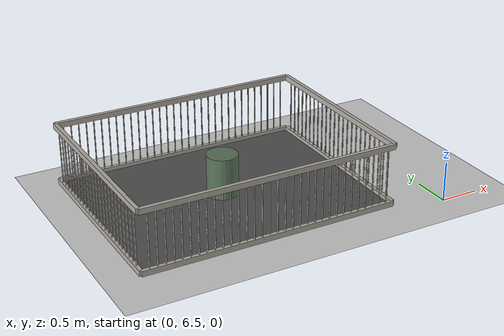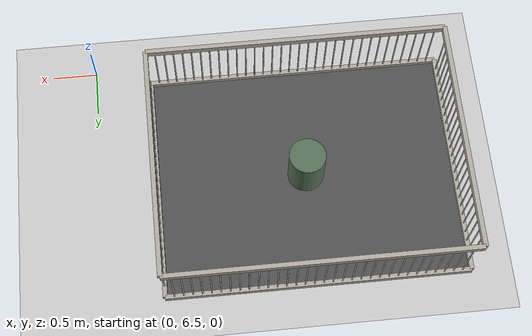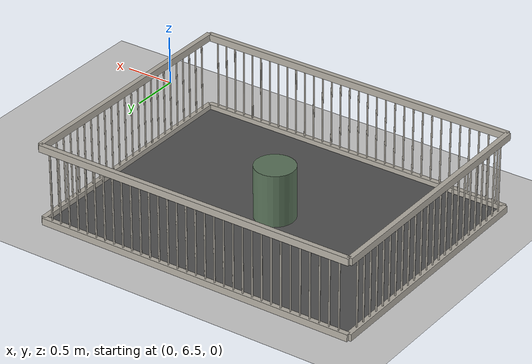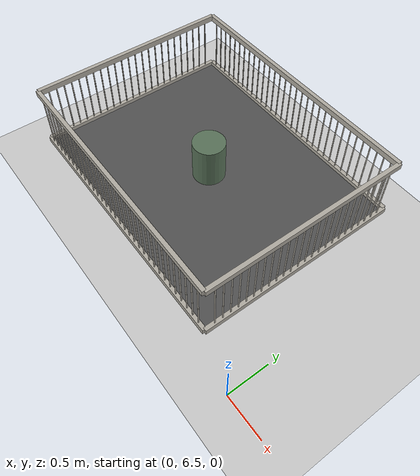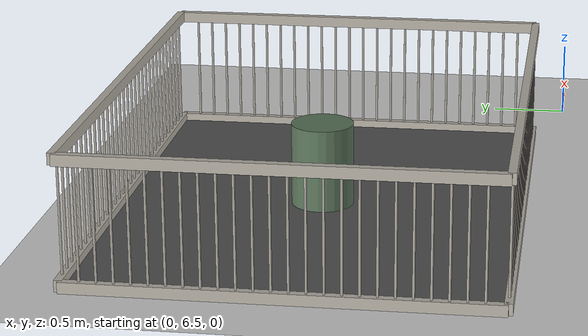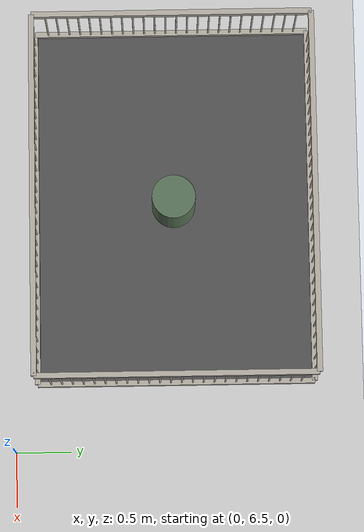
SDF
<sdf version="1.9">
 <world name="pig_pen_16units_world">
  <model name="ground_plane">
   <static>true</static>
   <link name="link">
    <collision name="collision">
     <geometry><plane><normal>0 0 1</normal><size>30 30</size></plane></geometry>
     <surface><friction><ode><mu>1.0</mu><mu2>1.0</mu2></ode></friction></surface>
    </collision>
    <visual name="visual">
     <geometry><plane><normal>0 0 1</normal><size>30 30</size></plane></geometry>
     <material>
      <ambient>0.8 0.8 0.8 1</ambient>
      <diffuse>0.8 0.8 0.8 1</diffuse>
      <specular>0.2 0.2 0.2 1</specular>
     </material>
    </visual>
   </link>
  </model>
  <model name="pen8">
   <pose>-2.275 7.975 0 0 0 0</pose>
   <static>true</static>
   <link name="floor">
    <pose>0 0 0.01 0 0 0</pose>
    <collision name="collision"><geometry><box><size>3.30 2.55 0.02</size></box></geometry></collision>
    <visual name="visual">
     <geometry><box><size>3.30 2.55 0.02</size></box></geometry>
     <material>
      <ambient>0.25 0.25 0.25 1</ambient>
      <diffuse>0.32 0.32 0.32 1</diffuse>
      <specular>0.05 0.05 0.05 1</specular>
     </material>
    </visual>
   </link>
   <link name="left_wall">
    <pose>0 1.275 0.415 0 0 0</pose>
    <collision name="top_rail_col">
     <pose>0 0 0.38 0 0 0</pose>
     <geometry><box><size>3.30 0.05 0.07</size></box></geometry>
    </collision>
    <visual name="top_rail_vis">
     <pose>0 0 0.38 0 0 0</pose>
     <geometry><box><size>3.30 0.05 0.07</size></box></geometry>
     <material><ambient>0.70 0.68 0.64 1</ambient><diffuse>0.70 0.68 0.64 1</diffuse></material>
    </visual>
    <collision name="bottom_rail_col">
     <pose>0 0 -0.38 0 0 0</pose>
     <geometry><box><size>3.30 0.05 0.07</size></box></geometry>
    </collision>
    <visual name="bottom_rail_vis">
     <pose>0 0 -0.38 0 0 0</pose>
     <geometry><box><size>3.30 0.05 0.07</size></box></geometry>
     <material><ambient>0.70 0.68 0.64 1</ambient><diffuse>0.70 0.68 0.64 1</diffuse></material>
    </visual>
    <collision name="bar_01_col">
     <pose>-1.55 0 0 0 0 0</pose>
     <geometry><cylinder><radius>0.0075</radius><length>0.69</length></cylinder></geometry>
    </collision>
    <visual name="bar_01_vis">
     <pose>-1.55 0 0 0 0 0</pose>
     <geometry><cylinder><radius>0.0075</radius><length>0.69</length></cylinder></geometry>
     <material><ambient>0.70 0.68 0.64 1</ambient><diffuse>0.70 0.68 0.64 1</diffuse></material>
    </visual>
    <collision name="bar_02_col">
     <pose>-1.45 0 0 0 0 0</pose>
     <geometry><cylinder><radius>0.0075</radius><length>0.69</length></cylinder></geometry>
    </collision>
    <visual name="bar_02_vis">
     <pose>-1.45 0 0 0 0 0</pose>
     <geometry><cylinder><radius>0.0075</radius><length>0.69</length></cylinder></geometry>
     <material><ambient>0.70 0.68 0.64 1</ambient><diffuse>0.70 0.68 0.64 1</diffuse></material>
    </visual>
    <collision name="bar_03_col">
     <pose>-1.35 0 0 0 0 0</pose>
     <geometry><cylinder><radius>0.0075</radius><length>0.69</length></cylinder></geometry>
    </collision>
    <visual name="bar_03_vis">
     <pose>-1.35 0 0 0 0 0</pose>
     <geometry><cylinder><radius>0.0075</radius><length>0.69</length></cylinder></geometry>
     <material><ambient>0.70 0.68 0.64 1</ambient><diffuse>0.70 0.68 0.64 1</diffuse></material>
    </visual>
    <collision name="bar_04_col">
     <pose>-1.25 0 0 0 0 0</pose>
     <geometry><cylinder><radius>0.0075</radius><length>0.69</length></cylinder></geometry>
    </collision>
    <visual name="bar_04_vis">
     <pose>-1.25 0 0 0 0 0</pose>
     <geometry><cylinder><radius>0.0075</radius><length>0.69</length></cylinder></geometry>
     <material><ambient>0.70 0.68 0.64 1</ambient><diffuse>0.70 0.68 0.64 1</diffuse></material>
    </visual>
    <collision name="bar_05_col">
     <pose>-1.15 0 0 0 0 0</pose>
     <geometry><cylinder><radius>0.0075</radius><length>0.69</length></cylinder></geometry>
    </collision>
    <visual name="bar_05_vis">
     <pose>-1.15 0 0 0 0 0</pose>
     <geometry><cylinder><radius>0.0075</radius><length>0.69</length></cylinder></geometry>
     <material><ambient>0.70 0.68 0.64 1</ambient><diffuse>0.70 0.68 0.64 1</diffuse></material>
    </visual>
    <collision name="bar_06_col">
     <pose>-1.05 0 0 0 0 0</pose>
     <geometry><cylinder><radius>0.0075</radius><length>0.69</length></cylinder></geometry>
    </collision>
    <visual name="bar_06_vis">
     <pose>-1.05 0 0 0 0 0</pose>
     <geometry><cylinder><radius>0.0075</radius><length>0.69</length></cylinder></geometry>
     <material><ambient>0.70 0.68 0.64 1</ambient><diffuse>0.70 0.68 0.64 1</diffuse></material>
    </visual>
    <collision name="bar_07_col">
     <pose>-0.95 0 0 0 0 0</pose>
     <geometry><cylinder><radius>0.0075</radius><length>0.69</length></cylinder></geometry>
    </collision>
    <visual name="bar_07_vis">
     <pose>-0.95 0 0 0 0 0</pose>
     <geometry><cylinder><radius>0.0075</radius><length>0.69</length></cylinder></geometry>
     <material><ambient>0.70 0.68 0.64 1</ambient><diffuse>0.70 0.68 0.64 1</diffuse></material>
    </visual>
    <collision name="bar_08_col">
     <pose>-0.85 0 0 0 0 0</pose>
     <geometry><cylinder><radius>0.0075</radius><length>0.69</length></cylinder></geometry>
    </collision>
    <visual name="bar_08_vis">
     <pose>-0.85 0 0 0 0 0</pose>
     <geometry><cylinder><radius>0.0075</radius><length>0.69</length></cylinder></geometry>
     <material><ambient>0.70 0.68 0.64 1</ambient><diffuse>0.70 0.68 0.64 1</diffuse></material>
    </visual>
    <collision name="bar_09_col">
     <pose>-0.75 0 0 0 0 0</pose>
     <geometry><cylinder><radius>0.0075</radius><length>0.69</length></cylinder></geometry>
    </collision>
    <visual name="bar_09_vis">
     <pose>-0.75 0 0 0 0 0</pose>
     <geometry><cylinder><radius>0.0075</radius><length>0.69</length></cylinder></geometry>
     <material><ambient>0.70 0.68 0.64 1</ambient><diffuse>0.70 0.68 0.64 1</diffuse></material>
    </visual>
    <collision name="bar_10_col">
     <pose>-0.65 0 0 0 0 0</pose>
     <geometry><cylinder><radius>0.0075</radius><length>0.69</length></cylinder></geometry>
    </collision>
    <visual name="bar_10_vis">
     <pose>-0.65 0 0 0 0 0</pose>
     <geometry><cylinder><radius>0.0075</radius><length>0.69</length></cylinder></geometry>
     <material><ambient>0.70 0.68 0.64 1</ambient><diffuse>0.70 0.68 0.64 1</diffuse></material>
    </visual>
    <collision name="bar_11_col">
     <pose>-0.55 0 0 0 0 0</pose>
     <geometry><cylinder><radius>0.0075</radius><length>0.69</length></cylinder></geometry>
    </collision>
    <visual name="bar_11_vis">
     <pose>-0.55 0 0 0 0 0</pose>
     <geometry><cylinder><radius>0.0075</radius><length>0.69</length></cylinder></geometry>
     <material><ambient>0.70 0.68 0.64 1</ambient><diffuse>0.70 0.68 0.64 1</diffuse></material>
    </visual>
    <collision name="bar_12_col">
     <pose>-0.45 0 0 0 0 0</pose>
     <geometry><cylinder><radius>0.0075</radius><length>0.69</length></cylinder></geometry>
    </collision>
    <visual name="bar_12_vis">
     <pose>-0.45 0 0 0 0 0</pose>
     <geometry><cylinder><radius>0.0075</radius><length>0.69</length></cylinder></geometry>
     <material><ambient>0.70 0.68 0.64 1</ambient><diffuse>0.70 0.68 0.64 1</diffuse></material>
    </visual>
    <collision name="bar_13_col">
     <pose>-0.35 0 0 0 0 0</pose>
     <geometry><cylinder><radius>0.0075</radius><length>0.69</length></cylinder></geometry>
    </collision>
    <visual name="bar_13_vis">
     <pose>-0.35 0 0 0 0 0</pose>
     <geometry><cylinder><radius>0.0075</radius><length>0.69</length></cylinder></geometry>
     <material><ambient>0.70 0.68 0.64 1</ambient><diffuse>0.70 0.68 0.64 1</diffuse></material>
    </visual>
    <collision name="bar_14_col">
     <pose>-0.25 0 0 0 0 0</pose>
     <geometry><cylinder><radius>0.0075</radius><length>0.69</length></cylinder></geometry>
    </collision>
    <visual name="bar_14_vis">
     <pose>-0.25 0 0 0 0 0</pose>
     <geometry><cylinder><radius>0.0075</radius><length>0.69</length></cylinder></geometry>
     <material><ambient>0.70 0.68 0.64 1</ambient><diffuse>0.70 0.68 0.64 1</diffuse></material>
    </visual>
    <collision name="bar_15_col">
     <pose>-0.15 0 0 0 0 0</pose>
     <geometry><cylinder><radius>0.0075</radius><length>0.69</length></cylinder></geometry>
    </collision>
    <visual name="bar_15_vis">
     <pose>-0.15 0 0 0 0 0</pose>
     <geometry><cylinder><radius>0.0075</radius><length>0.69</length></cylinder></geometry>
     <material><ambient>0.70 0.68 0.64 1</ambient><diffuse>0.70 0.68 0.64 1</diffuse></material>
    </visual>
    <collision name="bar_16_col">
     <pose>-0.05 0 0 0 0 0</pose>
     <geometry><cylinder><radius>0.0075</radius><length>0.69</length></cylinder></geometry>
    </collision>
    <visual name="bar_16_vis">
     <pose>-0.05 0 0 0 0 0</pose>
     <geometry><cylinder><radius>0.0075</radius><length>0.69</length></cylinder></geometry>
     <material><ambient>0.70 0.68 0.64 1</ambient><diffuse>0.70 0.68 0.64 1</diffuse></material>
    </visual>
    <collision name="bar_17_col">
     <pose>0.05 0 0 0 0 0</pose>
     <geometry><cylinder><radius>0.0075</radius><length>0.69</length></cylinder></geometry>
    </collision>
    <visual name="bar_17_vis">
     <pose>0.05 0 0 0 0 0</pose>
     <geometry><cylinder><radius>0.0075</radius><length>0.69</length></cylinder></geometry>
     <material><ambient>0.70 0.68 0.64 1</ambient><diffuse>0.70 0.68 0.64 1</diffuse></material>
    </visual>
    <collision name="bar_18_col">
     <pose>0.15 0 0 0 0 0</pose>
     <geometry><cylinder><radius>0.0075</radius><length>0.69</length></cylinder></geometry>
    </collision>
    <visual name="bar_18_vis">
     <pose>0.15 0 0 0 0 0</pose>
     <geometry><cylinder><radius>0.0075</radius><length>0.69</length></cylinder></geometry>
     <material><ambient>0.70 0.68 0.64 1</ambient><diffuse>0.70 0.68 0.64 1</diffuse></material>
    </visual>
    <collision name="bar_19_col">
     <pose>0.25 0 0 0 0 0</pose>
     <geometry><cylinder><radius>0.0075</radius><length>0.69</length></cylinder></geometry>
    </collision>
    <visual name="bar_19_vis">
     <pose>0.25 0 0 0 0 0</pose>
     <geometry><cylinder><radius>0.0075</radius><length>0.69</length></cylinder></geometry>
     <material><ambient>0.70 0.68 0.64 1</ambient><diffuse>0.70 0.68 0.64 1</diffuse></material>
    </visual>
    <collision name="bar_20_col">
     <pose>0.35 0 0 0 0 0</pose>
     <geometry><cylinder><radius>0.0075</radius><length>0.69</length></cylinder></geometry>
    </collision>
    <visual name="bar_20_vis">
     <pose>0.35 0 0 0 0 0</pose>
     <geometry><cylinder><radius>0.0075</radius><length>0.69</length></cylinder></geometry>
     <material><ambient>0.70 0.68 0.64 1</ambient><diffuse>0.70 0.68 0.64 1</diffuse></material>
    </visual>
    <collision name="bar_21_col">
     <pose>0.45 0 0 0 0 0</pose>
     <geometry><cylinder><radius>0.0075</radius><length>0.69</length></cylinder></geometry>
    </collision>
    <visual name="bar_21_vis">
     <pose>0.45 0 0 0 0 0</pose>
     <geometry><cylinder><radius>0.0075</radius><length>0.69</length></cylinder></geometry>
     <material><ambient>0.70 0.68 0.64 1</ambient><diffuse>0.70 0.68 0.64 1</diffuse></material>
    </visual>
    <collision name="bar_22_col">
     <pose>0.55 0 0 0 0 0</pose>
     <geometry><cylinder><radius>0.0075</radius><length>0.69</length></cylinder></geometry>
    </collision>
    <visual name="bar_22_vis">
     <pose>0.55 0 0 0 0 0</pose>
     <geometry><cylinder><radius>0.0075</radius><length>0.69</length></cylinder></geometry>
     <material><ambient>0.70 0.68 0.64 1</ambient><diffuse>0.70 0.68 0.64 1</diffuse></material>
    </visual>
    <collision name="bar_23_col">
     <pose>0.65 0 0 0 0 0</pose>
     <geometry><cylinder><radius>0.0075</radius><length>0.69</length></cylinder></geometry>
    </collision>
    <visual name="bar_23_vis">
     <pose>0.65 0 0 0 0 0</pose>
     <geometry><cylinder><radius>0.0075</radius><length>0.69</length></cylinder></geometry>
     <material><ambient>0.70 0.68 0.64 1</ambient><diffuse>0.70 0.68 0.64 1</diffuse></material>
    </visual>
    <collision name="bar_24_col">
     <pose>0.75 0 0 0 0 0</pose>
     <geometry><cylinder><radius>0.0075</radius><length>0.69</length></cylinder></geometry>
    </collision>
    <visual name="bar_24_vis">
     <pose>0.75 0 0 0 0 0</pose>
     <geometry><cylinder><radius>0.0075</radius><length>0.69</length></cylinder></geometry>
     <material><ambient>0.70 0.68 0.64 1</ambient><diffuse>0.70 0.68 0.64 1</diffuse></material>
    </visual>
    <collision name="bar_25_col">
     <pose>0.85 0 0 0 0 0</pose>
     <geometry><cylinder><radius>0.0075</radius><length>0.69</length></cylinder></geometry>
    </collision>
    <visual name="bar_25_vis">
     <pose>0.85 0 0 0 0 0</pose>
     <geometry><cylinder><radius>0.0075</radius><length>0.69</length></cylinder></geometry>
     <material><ambient>0.70 0.68 0.64 1</ambient><diffuse>0.70 0.68 0.64 1</diffuse></material>
    </visual>
    <collision name="bar_26_col">
     <pose>0.95 0 0 0 0 0</pose>
     <geometry><cylinder><radius>0.0075</radius><length>0.69</length></cylinder></geometry>
    </collision>
    <visual name="bar_26_vis">
     <pose>0.95 0 0 0 0 0</pose>
     <geometry><cylinder><radius>0.0075</radius><length>0.69</length></cylinder></geometry>
     <material><ambient>0.70 0.68 0.64 1</ambient><diffuse>0.70 0.68 0.64 1</diffuse></material>
    </visual>
    <collision name="bar_27_col">
     <pose>1.05 0 0 0 0 0</pose>
     <geometry><cylinder><radius>0.0075</radius><length>0.69</length></cylinder></geometry>
    </collision>
    <visual name="bar_27_vis">
     <pose>1.05 0 0 0 0 0</pose>
     <geometry><cylinder><radius>0.0075</radius><length>0.69</length></cylinder></geometry>
     <material><ambient>0.70 0.68 0.64 1</ambient><diffuse>0.70 0.68 0.64 1</diffuse></material>
    </visual>
    <collision name="bar_28_col">
     <pose>1.15 0 0 0 0 0</pose>
     <geometry><cylinder><radius>0.0075</radius><length>0.69</length></cylinder></geometry>
    </collision>
    <visual name="bar_28_vis">
     <pose>1.15 0 0 0 0 0</pose>
     <geometry><cylinder><radius>0.0075</radius><length>0.69</length></cylinder></geometry>
     <material><ambient>0.70 0.68 0.64 1</ambient><diffuse>0.70 0.68 0.64 1</diffuse></material>
    </visual>
    <collision name="bar_29_col">
     <pose>1.25 0 0 0 0 0</pose>
     <geometry><cylinder><radius>0.0075</radius><length>0.69</length></cylinder></geometry>
    </collision>
    <visual name="bar_29_vis">
     <pose>1.25 0 0 0 0 0</pose>
     <geometry><cylinder><radius>0.0075</radius><length>0.69</length></cylinder></geometry>
     <material><ambient>0.70 0.68 0.64 1</ambient><diffuse>0.70 0.68 0.64 1</diffuse></material>
    </visual>
    <collision name="bar_30_col">
     <pose>1.35 0 0 0 0 0</pose>
     <geometry><cylinder><radius>0.0075</radius><length>0.69</length></cylinder></geometry>
    </collision>
    <visual name="bar_30_vis">
     <pose>1.35 0 0 0 0 0</pose>
     <geometry><cylinder><radius>0.0075</radius><length>0.69</length></cylinder></geometry>
     <material><ambient>0.70 0.68 0.64 1</ambient><diffuse>0.70 0.68 0.64 1</diffuse></material>
    </visual>
    <collision name="bar_31_col">
     <pose>1.45 0 0 0 0 0</pose>
     <geometry><cylinder><radius>0.0075</radius><length>0.69</length></cylinder></geometry>
    </collision>
    <visual name="bar_31_vis">
     <pose>1.45 0 0 0 0 0</pose>
     <geometry><cylinder><radius>0.0075</radius><length>0.69</length></cylinder></geometry>
     <material><ambient>0.70 0.68 0.64 1</ambient><diffuse>0.70 0.68 0.64 1</diffuse></material>
    </visual>
    <collision name="bar_32_col">
     <pose>1.55 0 0 0 0 0</pose>
     <geometry><cylinder><radius>0.0075</radius><length>0.69</length></cylinder></geometry>
    </collision>
    <visual name="bar_32_vis">
     <pose>1.55 0 0 0 0 0</pose>
     <geometry><cylinder><radius>0.0075</radius><length>0.69</length></cylinder></geometry>
     <material><ambient>0.70 0.68 0.64 1</ambient><diffuse>0.70 0.68 0.64 1</diffuse></material>
    </visual>
   </link>
   <link name="right_wall">
    <pose>0 -1.275 0.415 0 0 0</pose>
    <collision name="top_rail_col">
     <pose>0 0 0.38 0 0 0</pose>
     <geometry><box><size>3.30 0.05 0.07</size></box></geometry>
    </collision>
    <visual name="top_rail_vis">
     <pose>0 0 0.38 0 0 0</pose>
     <geometry><box><size>3.30 0.05 0.07</size></box></geometry>
     <material><ambient>0.70 0.68 0.64 1</ambient><diffuse>0.70 0.68 0.64 1</diffuse></material>
    </visual>
    <collision name="bottom_rail_col">
     <pose>0 0 -0.38 0 0 0</pose>
     <geometry><box><size>3.30 0.05 0.07</size></box></geometry>
    </collision>
    <visual name="bottom_rail_vis">
     <pose>0 0 -0.38 0 0 0</pose>
     <geometry><box><size>3.30 0.05 0.07</size></box></geometry>
     <material><ambient>0.70 0.68 0.64 1</ambient><diffuse>0.70 0.68 0.64 1</diffuse></material>
    </visual>
    <collision name="bar_01_col">
     <pose>-1.55 0 0 0 0 0</pose>
     <geometry><cylinder><radius>0.0075</radius><length>0.69</length></cylinder></geometry>
    </collision>
    <visual name="bar_01_vis">
     <pose>-1.55 0 0 0 0 0</pose>
     <geometry><cylinder><radius>0.0075</radius><length>0.69</length></cylinder></geometry>
     <material><ambient>0.70 0.68 0.64 1</ambient><diffuse>0.70 0.68 0.64 1</diffuse></material>
    </visual>
    <collision name="bar_02_col">
     <pose>-1.45 0 0 0 0 0</pose>
     <geometry><cylinder><radius>0.0075</radius><length>0.69</length></cylinder></geometry>
    </collision>
    <visual name="bar_02_vis">
     <pose>-1.45 0 0 0 0 0</pose>
     <geometry><cylinder><radius>0.0075</radius><length>0.69</length></cylinder></geometry>
     <material><ambient>0.70 0.68 0.64 1</ambient><diffuse>0.70 0.68 0.64 1</diffuse></material>
    </visual>
    <collision name="bar_03_col">
     <pose>-1.35 0 0 0 0 0</pose>
     <geometry><cylinder><radius>0.0075</radius><length>0.69</length></cylinder></geometry>
    </collision>
    <visual name="bar_03_vis">
     <pose>-1.35 0 0 0 0 0</pose>
     <geometry><cylinder><radius>0.0075</radius><length>0.69</length></cylinder></geometry>
     <material><ambient>0.70 0.68 0.64 1</ambient><diffuse>0.70 0.68 0.64 1</diffuse></material>
    </visual>
    <collision name="bar_04_col">
     <pose>-1.25 0 0 0 0 0</pose>
     <geometry><cylinder><radius>0.0075</radius><length>0.69</length></cylinder></geometry>
    </collision>
    <visual name="bar_04_vis">
     <pose>-1.25 0 0 0 0 0</pose>
     <geometry><cylinder><radius>0.0075</radius><length>0.69</length></cylinder></geometry>
     <material><ambient>0.70 0.68 0.64 1</ambient><diffuse>0.70 0.68 0.64 1</diffuse></material>
    </visual>
    <collision name="bar_05_col">
     <pose>-1.15 0 0 0 0 0</pose>
     <geometry><cylinder><radius>0.0075</radius><length>0.69</length></cylinder></geometry>
    </collision>
    <visual name="bar_05_vis">
     <pose>-1.15 0 0 0 0 0</pose>
     <geometry><cylinder><radius>0.0075</radius><length>0.69</length></cylinder></geometry>
     <material><ambient>0.70 0.68 0.64 1</ambient><diffuse>0.70 0.68 0.64 1</diffuse></material>
    </visual>
    <collision name="bar_06_col">
     <pose>-1.05 0 0 0 0 0</pose>
     <geometry><cylinder><radius>0.0075</radius><length>0.69</length></cylinder></geometry>
    </collision>
    <visual name="bar_06_vis">
     <pose>-1.05 0 0 0 0 0</pose>
     <geometry><cylinder><radius>0.0075</radius><length>0.69</length></cylinder></geometry>
     <material><ambient>0.70 0.68 0.64 1</ambient><diffuse>0.70 0.68 0.64 1</diffuse></material>
    </visual>
    <collision name="bar_07_col">
     <pose>-0.95 0 0 0 0 0</pose>
     <geometry><cylinder><radius>0.0075</radius><length>0.69</length></cylinder></geometry>
    </collision>
    <visual name="bar_07_vis">
     <pose>-0.95 0 0 0 0 0</pose>
     <geometry><cylinder><radius>0.0075</radius><length>0.69</length></cylinder></geometry>
     <material><ambient>0.70 0.68 0.64 1</ambient><diffuse>0.70 0.68 0.64 1</diffuse></material>
    </visual>
    <collision name="bar_08_col">
     <pose>-0.85 0 0 0 0 0</pose>
     <geometry><cylinder><radius>0.0075</radius><length>0.69</length></cylinder></geometry>
    </collision>
    <visual name="bar_08_vis">
     <pose>-0.85 0 0 0 0 0</pose>
     <geometry><cylinder><radius>0.0075</radius><length>0.69</length></cylinder></geometry>
     <material><ambient>0.70 0.68 0.64 1</ambient><diffuse>0.70 0.68 0.64 1</diffuse></material>
    </visual>
    <collision name="bar_09_col">
     <pose>-0.75 0 0 0 0 0</pose>
     <geometry><cylinder><radius>0.0075</radius><length>0.69</length></cylinder></geometry>
    </collision>
    <visual name="bar_09_vis">
     <pose>-0.75 0 0 0 0 0</pose>
     <geometry><cylinder><radius>0.0075</radius><length>0.69</length></cylinder></geometry>
     <material><ambient>0.70 0.68 0.64 1</ambient><diffuse>0.70 0.68 0.64 1</diffuse></material>
    </visual>
    <collision name="bar_10_col">
     <pose>-0.65 0 0 0 0 0</pose>
     <geometry><cylinder><radius>0.0075</radius><length>0.69</length></cylinder></geometry>
    </collision>
    <visual name="bar_10_vis">
     <pose>-0.65 0 0 0 0 0</pose>
     <geometry><cylinder><radius>0.0075</radius><length>0.69</length></cylinder></geometry>
     <material><ambient>0.70 0.68 0.64 1</ambient><diffuse>0.70 0.68 0.64 1</diffuse></material>
    </visual>
    <collision name="bar_11_col">
     <pose>-0.55 0 0 0 0 0</pose>
     <geometry><cylinder><radius>0.0075</radius><length>0.69</length></cylinder></geometry>
    </collision>
    <visual name="bar_11_vis">
     <pose>-0.55 0 0 0 0 0</pose>
     <geometry><cylinder><radius>0.0075</radius><length>0.69</length></cylinder></geometry>
     <material><ambient>0.70 0.68 0.64 1</ambient><diffuse>0.70 0.68 0.64 1</diffuse></material>
    </visual>
    <collision name="bar_12_col">
     <pose>-0.45 0 0 0 0 0</pose>
     <geometry><cylinder><radius>0.0075</radius><length>0.69</length></cylinder></geometry>
    </collision>
    <visual name="bar_12_vis">
     <pose>-0.45 0 0 0 0 0</pose>
     <geometry><cylinder><radius>0.0075</radius><length>0.69</length></cylinder></geometry>
     <material><ambient>0.70 0.68 0.64 1</ambient><diffuse>0.70 0.68 0.64 1</diffuse></material>
    </visual>
    <collision name="bar_13_col">
     <pose>-0.35 0 0 0 0 0</pose>
     <geometry><cylinder><radius>0.0075</radius><length>0.69</length></cylinder></geometry>
    </collision>
    <visual name="bar_13_vis">
     <pose>-0.35 0 0 0 0 0</pose>
     <geometry><cylinder><radius>0.0075</radius><length>0.69</length></cylinder></geometry>
     <material><ambient>0.70 0.68 0.64 1</ambient><diffuse>0.70 0.68 0.64 1</diffuse></material>
    </visual>
    <collision name="bar_14_col">
     <pose>-0.25 0 0 0 0 0</pose>
     <geometry><cylinder><radius>0.0075</radius><length>0.69</length></cylinder></geometry>
    </collision>
    <visual name="bar_14_vis">
     <pose>-0.25 0 0 0 0 0</pose>
     <geometry><cylinder><radius>0.0075</radius><length>0.69</length></cylinder></geometry>
     <material><ambient>0.70 0.68 0.64 1</ambient><diffuse>0.70 0.68 0.64 1</diffuse></material>
    </visual>
    <collision name="bar_15_col">
     <pose>-0.15 0 0 0 0 0</pose>
     <geometry><cylinder><radius>0.0075</radius><length>0.69</length></cylinder></geometry>
    </collision>
    <visual name="bar_15_vis">
     <pose>-0.15 0 0 0 0 0</pose>
     <geometry><cylinder><radius>0.0075</radius><length>0.69</length></cylinder></geometry>
     <material><ambient>0.70 0.68 0.64 1</ambient><diffuse>0.70 0.68 0.64 1</diffuse></material>
    </visual>
    <collision name="bar_16_col">
     <pose>-0.05 0 0 0 0 0</pose>
     <geometry><cylinder><radius>0.0075</radius><length>0.69</length></cylinder></geometry>
    </collision>
    <visual name="bar_16_vis">
     <pose>-0.05 0 0 0 0 0</pose>
     <geometry><cylinder><radius>0.0075</radius><length>0.69</length></cylinder></geometry>
     <material><ambient>0.70 0.68 0.64 1</ambient><diffuse>0.70 0.68 0.64 1</diffuse></material>
    </visual>
    <collision name="bar_17_col">
     <pose>0.05 0 0 0 0 0</pose>
     <geometry><cylinder><radius>0.0075</radius><length>0.69</length></cylinder></geometry>
    </collision>
    <visual name="bar_17_vis">
     <pose>0.05 0 0 0 0 0</pose>
     <geometry><cylinder><radius>0.0075</radius><length>0.69</length></cylinder></geometry>
     <material><ambient>0.70 0.68 0.64 1</ambient><diffuse>0.70 0.68 0.64 1</diffuse></material>
    </visual>
    <collision name="bar_18_col">
     <pose>0.15 0 0 0 0 0</pose>
     <geometry><cylinder><radius>0.0075</radius><length>0.69</length></cylinder></geometry>
    </collision>
    <visual name="bar_18_vis">
     <pose>0.15 0 0 0 0 0</pose>
     <geometry><cylinder><radius>0.0075</radius><length>0.69</length></cylinder></geometry>
     <material><ambient>0.70 0.68 0.64 1</ambient><diffuse>0.70 0.68 0.64 1</diffuse></material>
    </visual>
    <collision name="bar_19_col">
     <pose>0.25 0 0 0 0 0</pose>
     <geometry><cylinder><radius>0.0075</radius><length>0.69</length></cylinder></geometry>
    </collision>
    <visual name="bar_19_vis">
     <pose>0.25 0 0 0 0 0</pose>
     <geometry><cylinder><radius>0.0075</radius><length>0.69</length></cylinder></geometry>
     <material><ambient>0.70 0.68 0.64 1</ambient><diffuse>0.70 0.68 0.64 1</diffuse></material>
    </visual>
    <collision name="bar_20_col">
     <pose>0.35 0 0 0 0 0</pose>
     <geometry><cylinder><radius>0.0075</radius><length>0.69</length></cylinder></geometry>
    </collision>
    <visual name="bar_20_vis">
     <pose>0.35 0 0 0 0 0</pose>
     <geometry><cylinder><radius>0.0075</radius><length>0.69</length></cylinder></geometry>
     <material><ambient>0.70 0.68 0.64 1</ambient><diffuse>0.70 0.68 0.64 1</diffuse></material>
    </visual>
    <collision name="bar_21_col">
     <pose>0.45 0 0 0 0 0</pose>
     <geometry><cylinder><radius>0.0075</radius><length>0.69</length></cylinder></geometry>
    </collision>
    <visual name="bar_21_vis">
     <pose>0.45 0 0 0 0 0</pose>
     <geometry><cylinder><radius>0.0075</radius><length>0.69</length></cylinder></geometry>
     <material><ambient>0.70 0.68 0.64 1</ambient><diffuse>0.70 0.68 0.64 1</diffuse></material>
    </visual>
    <collision name="bar_22_col">
     <pose>0.55 0 0 0 0 0</pose>
     <geometry><cylinder><radius>0.0075</radius><length>0.69</length></cylinder></geometry>
    </collision>
    <visual name="bar_22_vis">
     <pose>0.55 0 0 0 0 0</pose>
     <geometry><cylinder><radius>0.0075</radius><length>0.69</length></cylinder></geometry>
     <material><ambient>0.70 0.68 0.64 1</ambient><diffuse>0.70 0.68 0.64 1</diffuse></material>
    </visual>
    <collision name="bar_23_col">
     <pose>0.65 0 0 0 0 0</pose>
     <geometry><cylinder><radius>0.0075</radius><length>0.69</length></cylinder></geometry>
    </collision>
    <visual name="bar_23_vis">
     <pose>0.65 0 0 0 0 0</pose>
     <geometry><cylinder><radius>0.0075</radius><length>0.69</length></cylinder></geometry>
     <material><ambient>0.70 0.68 0.64 1</ambient><diffuse>0.70 0.68 0.64 1</diffuse></material>
    </visual>
    <collision name="bar_24_col">
     <pose>0.75 0 0 0 0 0</pose>
     <geometry><cylinder><radius>0.0075</radius><length>0.69</length></cylinder></geometry>
    </collision>
    <visual name="bar_24_vis">
     <pose>0.75 0 0 0 0 0</pose>
     <geometry><cylinder><radius>0.0075</radius><length>0.69</length></cylinder></geometry>
     <material><ambient>0.70 0.68 0.64 1</ambient><diffuse>0.70 0.68 0.64 1</diffuse></material>
    </visual>
    <collision name="bar_25_col">
     <pose>0.85 0 0 0 0 0</pose>
     <geometry><cylinder><radius>0.0075</radius><length>0.69</length></cylinder></geometry>
    </collision>
    <visual name="bar_25_vis">
     <pose>0.85 0 0 0 0 0</pose>
     <geometry><cylinder><radius>0.0075</radius><length>0.69</length></cylinder></geometry>
     <material><ambient>0.70 0.68 0.64 1</ambient><diffuse>0.70 0.68 0.64 1</diffuse></material>
    </visual>
    <collision name="bar_26_col">
     <pose>0.95 0 0 0 0 0</pose>
     <geometry><cylinder><radius>0.0075</radius><length>0.69</length></cylinder></geometry>
    </collision>
    <visual name="bar_26_vis">
     <pose>0.95 0 0 0 0 0</pose>
     <geometry><cylinder><radius>0.0075</radius><length>0.69</length></cylinder></geometry>
     <material><ambient>0.70 0.68 0.64 1</ambient><diffuse>0.70 0.68 0.64 1</diffuse></material>
    </visual>
    <collision name="bar_27_col">
     <pose>1.05 0 0 0 0 0</pose>
     <geometry><cylinder><radius>0.0075</radius><length>0.69</length></cylinder></geometry>
    </collision>
    <visual name="bar_27_vis">
     <pose>1.05 0 0 0 0 0</pose>
     <geometry><cylinder><radius>0.0075</radius><length>0.69</length></cylinder></geometry>
     <material><ambient>0.70 0.68 0.64 1</ambient><diffuse>0.70 0.68 0.64 1</diffuse></material>
    </visual>
    <collision name="bar_28_col">
     <pose>1.15 0 0 0 0 0</pose>
     <geometry><cylinder><radius>0.0075</radius><length>0.69</length></cylinder></geometry>
    </collision>
    <visual name="bar_28_vis">
     <pose>1.15 0 0 0 0 0</pose>
     <geometry><cylinder><radius>0.0075</radius><length>0.69</length></cylinder></geometry>
     <material><ambient>0.70 0.68 0.64 1</ambient><diffuse>0.70 0.68 0.64 1</diffuse></material>
    </visual>
    <collision name="bar_29_col">
     <pose>1.25 0 0 0 0 0</pose>
     <geometry><cylinder><radius>0.0075</radius><length>0.69</length></cylinder></geometry>
    </collision>
    <visual name="bar_29_vis">
     <pose>1.25 0 0 0 0 0</pose>
     <geometry><cylinder><radius>0.0075</radius><length>0.69</length></cylinder></geometry>
     <material><ambient>0.70 0.68 0.64 1</ambient><diffuse>0.70 0.68 0.64 1</diffuse></material>
    </visual>
    <collision name="bar_30_col">
     <pose>1.35 0 0 0 0 0</pose>
     <geometry><cylinder><radius>0.0075</radius><length>0.69</length></cylinder></geometry>
    </collision>
    <visual name="bar_30_vis">
     <pose>1.35 0 0 0 0 0</pose>
     <geometry><cylinder><radius>0.0075</radius><length>0.69</length></cylinder></geometry>
     <material><ambient>0.70 0.68 0.64 1</ambient><diffuse>0.70 0.68 0.64 1</diffuse></material>
    </visual>
    <collision name="bar_31_col">
     <pose>1.45 0 0 0 0 0</pose>
     <geometry><cylinder><radius>0.0075</radius><length>0.69</length></cylinder></geometry>
    </collision>
    <visual name="bar_31_vis">
     <pose>1.45 0 0 0 0 0</pose>
     <geometry><cylinder><radius>0.0075</radius><length>0.69</length></cylinder></geometry>
     <material><ambient>0.70 0.68 0.64 1</ambient><diffuse>0.70 0.68 0.64 1</diffuse></material>
    </visual>
    <collision name="bar_32_col">
     <pose>1.55 0 0 0 0 0</pose>
     <geometry><cylinder><radius>0.0075</radius><length>0.69</length></cylinder></geometry>
    </collision>
    <visual name="bar_32_vis">
     <pose>1.55 0 0 0 0 0</pose>
     <geometry><cylinder><radius>0.0075</radius><length>0.69</length></cylinder></geometry>
     <material><ambient>0.70 0.68 0.64 1</ambient><diffuse>0.70 0.68 0.64 1</diffuse></material>
    </visual>
   </link>
   <link name="back_wall">
    <pose>1.65 0 0.415 0 0 0</pose>
    <collision name="top_rail_col">
     <pose>0 0 0.38 0 0 0</pose>
     <geometry><box><size>0.05 2.55 0.07</size></box></geometry>
    </collision>
    <visual name="top_rail_vis">
     <pose>0 0 0.38 0 0 0</pose>
     <geometry><box><size>0.05 2.55 0.07</size></box></geometry>
     <material><ambient>0.70 0.68 0.64 1</ambient><diffuse>0.70 0.68 0.64 1</diffuse></material>
    </visual>
    <collision name="bottom_rail_col">
     <pose>0 0 -0.38 0 0 0</pose>
     <geometry><box><size>0.05 2.55 0.07</size></box></geometry>
    </collision>
    <visual name="bottom_rail_vis">
     <pose>0 0 -0.38 0 0 0</pose>
     <geometry><box><size>0.05 2.55 0.07</size></box></geometry>
     <material><ambient>0.70 0.68 0.64 1</ambient><diffuse>0.70 0.68 0.64 1</diffuse></material>
    </visual>
    <collision name="bar_01_col">
     <pose>0 -1.15 0 0 0 0</pose>
     <geometry><cylinder><radius>0.0075</radius><length>0.69</length></cylinder></geometry>
    </collision>
    <visual name="bar_01_vis">
     <pose>0 -1.15 0 0 0 0</pose>
     <geometry><cylinder><radius>0.0075</radius><length>0.69</length></cylinder></geometry>
     <material><ambient>0.70 0.68 0.64 1</ambient><diffuse>0.70 0.68 0.64 1</diffuse></material>
    </visual>
    <collision name="bar_02_col">
     <pose>0 -1.05 0 0 0 0</pose>
     <geometry><cylinder><radius>0.0075</radius><length>0.69</length></cylinder></geometry>
    </collision>
    <visual name="bar_02_vis">
     <pose>0 -1.05 0 0 0 0</pose>
     <geometry><cylinder><radius>0.0075</radius><length>0.69</length></cylinder></geometry>
     <material><ambient>0.70 0.68 0.64 1</ambient><diffuse>0.70 0.68 0.64 1</diffuse></material>
    </visual>
    <collision name="bar_03_col">
     <pose>0 -0.95 0 0 0 0</pose>
     <geometry><cylinder><radius>0.0075</radius><length>0.69</length></cylinder></geometry>
    </collision>
    <visual name="bar_03_vis">
     <pose>0 -0.95 0 0 0 0</pose>
     <geometry><cylinder><radius>0.0075</radius><length>0.69</length></cylinder></geometry>
     <material><ambient>0.70 0.68 0.64 1</ambient><diffuse>0.70 0.68 0.64 1</diffuse></material>
    </visual>
    <collision name="bar_04_col">
     <pose>0 -0.85 0 0 0 0</pose>
     <geometry><cylinder><radius>0.0075</radius><length>0.69</length></cylinder></geometry>
    </collision>
    <visual name="bar_04_vis">
     <pose>0 -0.85 0 0 0 0</pose>
     <geometry><cylinder><radius>0.0075</radius><length>0.69</length></cylinder></geometry>
     <material><ambient>0.70 0.68 0.64 1</ambient><diffuse>0.70 0.68 0.64 1</diffuse></material>
    </visual>
    <collision name="bar_05_col">
     <pose>0 -0.75 0 0 0 0</pose>
     <geometry><cylinder><radius>0.0075</radius><length>0.69</length></cylinder></geometry>
    </collision>
    <visual name="bar_05_vis">
     <pose>0 -0.75 0 0 0 0</pose>
     <geometry><cylinder><radius>0.0075</radius><length>0.69</length></cylinder></geometry>
     <material><ambient>0.70 0.68 0.64 1</ambient><diffuse>0.70 0.68 0.64 1</diffuse></material>
    </visual>
    <collision name="bar_06_col">
     <pose>0 -0.65 0 0 0 0</pose>
     <geometry><cylinder><radius>0.0075</radius><length>0.69</length></cylinder></geometry>
    </collision>
    <visual name="bar_06_vis">
     <pose>0 -0.65 0 0 0 0</pose>
     <geometry><cylinder><radius>0.0075</radius><length>0.69</length></cylinder></geometry>
     <material><ambient>0.70 0.68 0.64 1</ambient><diffuse>0.70 0.68 0.64 1</diffuse></material>
    </visual>
    <collision name="bar_07_col">
     <pose>0 -0.55 0 0 0 0</pose>
     <geometry><cylinder><radius>0.0075</radius><length>0.69</length></cylinder></geometry>
    </collision>
    <visual name="bar_07_vis">
     <pose>0 -0.55 0 0 0 0</pose>
     <geometry><cylinder><radius>0.0075</radius><length>0.69</length></cylinder></geometry>
     <material><ambient>0.70 0.68 0.64 1</ambient><diffuse>0.70 0.68 0.64 1</diffuse></material>
    </visual>
    <collision name="bar_08_col">
     <pose>0 -0.45 0 0 0 0</pose>
     <geometry><cylinder><radius>0.0075</radius><length>0.69</length></cylinder></geometry>
    </collision>
    <visual name="bar_08_vis">
     <pose>0 -0.45 0 0 0 0</pose>
     <geometry><cylinder><radius>0.0075</radius><length>0.69</length></cylinder></geometry>
     <material><ambient>0.70 0.68 0.64 1</ambient><diffuse>0.70 0.68 0.64 1</diffuse></material>
    </visual>
    <collision name="bar_09_col">
     <pose>0 -0.35 0 0 0 0</pose>
     <geometry><cylinder><radius>0.0075</radius><length>0.69</length></cylinder></geometry>
    </collision>
    <visual name="bar_09_vis">
     <pose>0 -0.35 0 0 0 0</pose>
     <geometry><cylinder><radius>0.0075</radius><length>0.69</length></cylinder></geometry>
     <material><ambient>0.70 0.68 0.64 1</ambient><diffuse>0.70 0.68 0.64 1</diffuse></material>
    </visual>
    <collision name="bar_10_col">
     <pose>0 -0.25 0 0 0 0</pose>
     <geometry><cylinder><radius>0.0075</radius><length>0.69</length></cylinder></geometry>
    </collision>
    <visual name="bar_10_vis">
     <pose>0 -0.25 0 0 0 0</pose>
     <geometry><cylinder><radius>0.0075</radius><length>0.69</length></cylinder></geometry>
     <material><ambient>0.70 0.68 0.64 1</ambient><diffuse>0.70 0.68 0.64 1</diffuse></material>
    </visual>
    <collision name="bar_11_col">
     <pose>0 -0.15 0 0 0 0</pose>
     <geometry><cylinder><radius>0.0075</radius><length>0.69</length></cylinder></geometry>
    </collision>
    <visual name="bar_11_vis">
     <pose>0 -0.15 0 0 0 0</pose>
     <geometry><cylinder><radius>0.0075</radius><length>0.69</length></cylinder></geometry>
     <material><ambient>0.70 0.68 0.64 1</ambient><diffuse>0.70 0.68 0.64 1</diffuse></material>
    </visual>
    <collision name="bar_12_col">
     <pose>0 -0.05 0 0 0 0</pose>
     <geometry><cylinder><radius>0.0075</radius><length>0.69</length></cylinder></geometry>
    </collision>
    <visual name="bar_12_vis">
     <pose>0 -0.05 0 0 0 0</pose>
     <geometry><cylinder><radius>0.0075</radius><length>0.69</length></cylinder></geometry>
     <material><ambient>0.70 0.68 0.64 1</ambient><diffuse>0.70 0.68 0.64 1</diffuse></material>
    </visual>
    <collision name="bar_13_col">
     <pose>0 0.05 0 0 0 0</pose>
     <geometry><cylinder><radius>0.0075</radius><length>0.69</length></cylinder></geometry>
    </collision>
    <visual name="bar_13_vis">
     <pose>0 0.05 0 0 0 0</pose>
     <geometry><cylinder><radius>0.0075</radius><length>0.69</length></cylinder></geometry>
     <material><ambient>0.70 0.68 0.64 1</ambient><diffuse>0.70 0.68 0.64 1</diffuse></material>
    </visual>
    <collision name="bar_14_col">
     <pose>0 0.15 0 0 0 0</pose>
     <geometry><cylinder><radius>0.0075</radius><length>0.69</length></cylinder></geometry>
    </collision>
    <visual name="bar_14_vis">
     <pose>0 0.15 0 0 0 0</pose>
     <geometry><cylinder><radius>0.0075</radius><length>0.69</length></cylinder></geometry>
     <material><ambient>0.70 0.68 0.64 1</ambient><diffuse>0.70 0.68 0.64 1</diffuse></material>
    </visual>
    <collision name="bar_15_col">
     <pose>0 0.25 0 0 0 0</pose>
     <geometry><cylinder><radius>0.0075</radius><length>0.69</length></cylinder></geometry>
    </collision>
    <visual name="bar_15_vis">
     <pose>0 0.25 0 0 0 0</pose>
     <geometry><cylinder><radius>0.0075</radius><length>0.69</length></cylinder></geometry>
     <material><ambient>0.70 0.68 0.64 1</ambient><diffuse>0.70 0.68 0.64 1</diffuse></material>
    </visual>
    <collision name="bar_16_col">
     <pose>0 0.35 0 0 0 0</pose>
     <geometry><cylinder><radius>0.0075</radius><length>0.69</length></cylinder></geometry>
    </collision>
    <visual name="bar_16_vis">
     <pose>0 0.35 0 0 0 0</pose>
     <geometry><cylinder><radius>0.0075</radius><length>0.69</length></cylinder></geometry>
     <material><ambient>0.70 0.68 0.64 1</ambient><diffuse>0.70 0.68 0.64 1</diffuse></material>
    </visual>
    <collision name="bar_17_col">
     <pose>0 0.45 0 0 0 0</pose>
     <geometry><cylinder><radius>0.0075</radius><length>0.69</length></cylinder></geometry>
    </collision>
    <visual name="bar_17_vis">
     <pose>0 0.45 0 0 0 0</pose>
     <geometry><cylinder><radius>0.0075</radius><length>0.69</length></cylinder></geometry>
     <material><ambient>0.70 0.68 0.64 1</ambient><diffuse>0.70 0.68 0.64 1</diffuse></material>
    </visual>
    <collision name="bar_18_col">
     <pose>0 0.55 0 0 0 0</pose>
     <geometry><cylinder><radius>0.0075</radius><length>0.69</length></cylinder></geometry>
    </collision>
    <visual name="bar_18_vis">
     <pose>0 0.55 0 0 0 0</pose>
     <geometry><cylinder><radius>0.0075</radius><length>0.69</length></cylinder></geometry>
     <material><ambient>0.70 0.68 0.64 1</ambient><diffuse>0.70 0.68 0.64 1</diffuse></material>
    </visual>
    <collision name="bar_19_col">
     <pose>0 0.65 0 0 0 0</pose>
     <geometry><cylinder><radius>0.0075</radius><length>0.69</length></cylinder></geometry>
    </collision>
    <visual name="bar_19_vis">
     <pose>0 0.65 0 0 0 0</pose>
     <geometry><cylinder><radius>0.0075</radius><length>0.69</length></cylinder></geometry>
     <material><ambient>0.70 0.68 0.64 1</ambient><diffuse>0.70 0.68 0.64 1</diffuse></material>
    </visual>
    <collision name="bar_20_col">
     <pose>0 0.75 0 0 0 0</pose>
     <geometry><cylinder><radius>0.0075</radius><length>0.69</length></cylinder></geometry>
    </collision>
    <visual name="bar_20_vis">
     <pose>0 0.75 0 0 0 0</pose>
     <geometry><cylinder><radius>0.0075</radius><length>0.69</length></cylinder></geometry>
     <material><ambient>0.70 0.68 0.64 1</ambient><diffuse>0.70 0.68 0.64 1</diffuse></material>
    </visual>
    <collision name="bar_21_col">
     <pose>0 0.85 0 0 0 0</pose>
     <geometry><cylinder><radius>0.0075</radius><length>0.69</length></cylinder></geometry>
    </collision>
    <visual name="bar_21_vis">
     <pose>0 0.85 0 0 0 0</pose>
     <geometry><cylinder><radius>0.0075</radius><length>0.69</length></cylinder></geometry>
     <material><ambient>0.70 0.68 0.64 1</ambient><diffuse>0.70 0.68 0.64 1</diffuse></material>
    </visual>
    <collision name="bar_22_col">
     <pose>0 0.95 0 0 0 0</pose>
     <geometry><cylinder><radius>0.0075</radius><length>0.69</length></cylinder></geometry>
    </collision>
    <visual name="bar_22_vis">
     <pose>0 0.95 0 0 0 0</pose>
     <geometry><cylinder><radius>0.0075</radius><length>0.69</length></cylinder></geometry>
     <material><ambient>0.70 0.68 0.64 1</ambient><diffuse>0.70 0.68 0.64 1</diffuse></material>
    </visual>
    <collision name="bar_23_col">
     <pose>0 1.05 0 0 0 0</pose>
     <geometry><cylinder><radius>0.0075</radius><length>0.69</length></cylinder></geometry>
    </collision>
    <visual name="bar_23_vis">
     <pose>0 1.05 0 0 0 0</pose>
     <geometry><cylinder><radius>0.0075</radius><length>0.69</length></cylinder></geometry>
     <material><ambient>0.70 0.68 0.64 1</ambient><diffuse>0.70 0.68 0.64 1</diffuse></material>
    </visual>
    <collision name="bar_24_col">
     <pose>0 1.15 0 0 0 0</pose>
     <geometry><cylinder><radius>0.0075</radius><length>0.69</length></cylinder></geometry>
    </collision>
    <visual name="bar_24_vis">
     <pose>0 1.15 0 0 0 0</pose>
     <geometry><cylinder><radius>0.0075</radius><length>0.69</length></cylinder></geometry>
     <material><ambient>0.70 0.68 0.64 1</ambient><diffuse>0.70 0.68 0.64 1</diffuse></material>
    </visual>
   </link>
   <link name="front_wall">
    <pose>-1.65 0 0.415 0 0 0</pose>
    <collision name="top_rail_col">
     <pose>0 0 0.38 0 0 0</pose>
     <geometry><box><size>0.05 2.55 0.07</size></box></geometry>
    </collision>
    <visual name="top_rail_vis">
     <pose>0 0 0.38 0 0 0</pose>
     <geometry><box><size>0.05 2.55 0.07</size></box></geometry>
     <material><ambient>0.70 0.68 0.64 1</ambient><diffuse>0.70 0.68 0.64 1</diffuse></material>
    </visual>
    <collision name="bottom_rail_col">
     <pose>0 0 -0.38 0 0 0</pose>
     <geometry><box><size>0.05 2.55 0.07</size></box></geometry>
    </collision>
    <visual name="bottom_rail_vis">
     <pose>0 0 -0.38 0 0 0</pose>
     <geometry><box><size>0.05 2.55 0.07</size></box></geometry>
     <material><ambient>0.70 0.68 0.64 1</ambient><diffuse>0.70 0.68 0.64 1</diffuse></material>
    </visual>
    <collision name="bar_01_col">
     <pose>0 -1.15 0 0 0 0</pose>
     <geometry><cylinder><radius>0.0075</radius><length>0.69</length></cylinder></geometry>
    </collision>
    <visual name="bar_01_vis">
     <pose>0 -1.15 0 0 0 0</pose>
     <geometry><cylinder><radius>0.0075</radius><length>0.69</length></cylinder></geometry>
     <material><ambient>0.70 0.68 0.64 1</ambient><diffuse>0.70 0.68 0.64 1</diffuse></material>
    </visual>
    <collision name="bar_02_col">
     <pose>0 -1.05 0 0 0 0</pose>
     <geometry><cylinder><radius>0.0075</radius><length>0.69</length></cylinder></geometry>
    </collision>
    <visual name="bar_02_vis">
     <pose>0 -1.05 0 0 0 0</pose>
     <geometry><cylinder><radius>0.0075</radius><length>0.69</length></cylinder></geometry>
     <material><ambient>0.70 0.68 0.64 1</ambient><diffuse>0.70 0.68 0.64 1</diffuse></material>
    </visual>
    <collision name="bar_03_col">
     <pose>0 -0.95 0 0 0 0</pose>
     <geometry><cylinder><radius>0.0075</radius><length>0.69</length></cylinder></geometry>
    </collision>
    <visual name="bar_03_vis">
     <pose>0 -0.95 0 0 0 0</pose>
     <geometry><cylinder><radius>0.0075</radius><length>0.69</length></cylinder></geometry>
     <material><ambient>0.70 0.68 0.64 1</ambient><diffuse>0.70 0.68 0.64 1</diffuse></material>
    </visual>
    <collision name="bar_04_col">
     <pose>0 -0.85 0 0 0 0</pose>
     <geometry><cylinder><radius>0.0075</radius><length>0.69</length></cylinder></geometry>
    </collision>
    <visual name="bar_04_vis">
     <pose>0 -0.85 0 0 0 0</pose>
     <geometry><cylinder><radius>0.0075</radius><length>0.69</length></cylinder></geometry>
     <material><ambient>0.70 0.68 0.64 1</ambient><diffuse>0.70 0.68 0.64 1</diffuse></material>
    </visual>
    <collision name="bar_05_col">
     <pose>0 -0.75 0 0 0 0</pose>
     <geometry><cylinder><radius>0.0075</radius><length>0.69</length></cylinder></geometry>
    </collision>
    <visual name="bar_05_vis">
     <pose>0 -0.75 0 0 0 0</pose>
     <geometry><cylinder><radius>0.0075</radius><length>0.69</length></cylinder></geometry>
     <material><ambient>0.70 0.68 0.64 1</ambient><diffuse>0.70 0.68 0.64 1</diffuse></material>
    </visual>
    <collision name="bar_06_col">
     <pose>0 -0.65 0 0 0 0</pose>
     <geometry><cylinder><radius>0.0075</radius><length>0.69</length></cylinder></geometry>
    </collision>
    <visual name="bar_06_vis">
     <pose>0 -0.65 0 0 0 0</pose>
     <geometry><cylinder><radius>0.0075</radius><length>0.69</length></cylinder></geometry>
     <material><ambient>0.70 0.68 0.64 1</ambient><diffuse>0.70 0.68 0.64 1</diffuse></material>
    </visual>
    <collision name="bar_07_col">
     <pose>0 -0.55 0 0 0 0</pose>
     <geometry><cylinder><radius>0.0075</radius><length>0.69</length></cylinder></geometry>
    </collision>
    <visual name="bar_07_vis">
     <pose>0 -0.55 0 0 0 0</pose>
     <geometry><cylinder><radius>0.0075</radius><length>0.69</length></cylinder></geometry>
     <material><ambient>0.70 0.68 0.64 1</ambient><diffuse>0.70 0.68 0.64 1</diffuse></material>
    </visual>
    <collision name="bar_08_col">
     <pose>0 -0.45 0 0 0 0</pose>
     <geometry><cylinder><radius>0.0075</radius><length>0.69</length></cylinder></geometry>
    </collision>
    <visual name="bar_08_vis">
     <pose>0 -0.45 0 0 0 0</pose>
     <geometry><cylinder><radius>0.0075</radius><length>0.69</length></cylinder></geometry>
     <material><ambient>0.70 0.68 0.64 1</ambient><diffuse>0.70 0.68 0.64 1</diffuse></material>
    </visual>
    <collision name="bar_09_col">
     <pose>0 -0.35 0 0 0 0</pose>
     <geometry><cylinder><radius>0.0075</radius><length>0.69</length></cylinder></geometry>
    </collision>
    <visual name="bar_09_vis">
     <pose>0 -0.35 0 0 0 0</pose>
     <geometry><cylinder><radius>0.0075</radius><length>0.69</length></cylinder></geometry>
     <material><ambient>0.70 0.68 0.64 1</ambient><diffuse>0.70 0.68 0.64 1</diffuse></material>
    </visual>
    <collision name="bar_10_col">
     <pose>0 -0.25 0 0 0 0</pose>
     <geometry><cylinder><radius>0.0075</radius><length>0.69</length></cylinder></geometry>
    </collision>
    <visual name="bar_10_vis">
     <pose>0 -0.25 0 0 0 0</pose>
     <geometry><cylinder><radius>0.0075</radius><length>0.69</length></cylinder></geometry>
     <material><ambient>0.70 0.68 0.64 1</ambient><diffuse>0.70 0.68 0.64 1</diffuse></material>
    </visual>
    <collision name="bar_11_col">
     <pose>0 -0.15 0 0 0 0</pose>
     <geometry><cylinder><radius>0.0075</radius><length>0.69</length></cylinder></geometry>
    </collision>
    <visual name="bar_11_vis">
     <pose>0 -0.15 0 0 0 0</pose>
     <geometry><cylinder><radius>0.0075</radius><length>0.69</length></cylinder></geometry>
     <material><ambient>0.70 0.68 0.64 1</ambient><diffuse>0.70 0.68 0.64 1</diffuse></material>
    </visual>
    <collision name="bar_12_col">
     <pose>0 -0.05 0 0 0 0</pose>
     <geometry><cylinder><radius>0.0075</radius><length>0.69</length></cylinder></geometry>
    </collision>
    <visual name="bar_12_vis">
     <pose>0 -0.05 0 0 0 0</pose>
     <geometry><cylinder><radius>0.0075</radius><length>0.69</length></cylinder></geometry>
     <material><ambient>0.70 0.68 0.64 1</ambient><diffuse>0.70 0.68 0.64 1</diffuse></material>
    </visual>
    <collision name="bar_13_col">
     <pose>0 0.05 0 0 0 0</pose>
     <geometry><cylinder><radius>0.0075</radius><length>0.69</length></cylinder></geometry>
    </collision>
    <visual name="bar_13_vis">
     <pose>0 0.05 0 0 0 0</pose>
     <geometry><cylinder><radius>0.0075</radius><length>0.69</length></cylinder></geometry>
     <material><ambient>0.70 0.68 0.64 1</ambient><diffuse>0.70 0.68 0.64 1</diffuse></material>
    </visual>
    <collision name="bar_14_col">
     <pose>0 0.15 0 0 0 0</pose>
     <geometry><cylinder><radius>0.0075</radius><length>0.69</length></cylinder></geometry>
    </collision>
    <visual name="bar_14_vis">
     <pose>0 0.15 0 0 0 0</pose>
     <geometry><cylinder><radius>0.0075</radius><length>0.69</length></cylinder></geometry>
     <material><ambient>0.70 0.68 0.64 1</ambient><diffuse>0.70 0.68 0.64 1</diffuse></material>
    </visual>
    <collision name="bar_15_col">
     <pose>0 0.25 0 0 0 0</pose>
     <geometry><cylinder><radius>0.0075</radius><length>0.69</length></cylinder></geometry>
    </collision>
    <visual name="bar_15_vis">
     <pose>0 0.25 0 0 0 0</pose>
     <geometry><cylinder><radius>0.0075</radius><length>0.69</length></cylinder></geometry>
     <material><ambient>0.70 0.68 0.64 1</ambient><diffuse>0.70 0.68 0.64 1</diffuse></material>
    </visual>
    <collision name="bar_16_col">
     <pose>0 0.35 0 0 0 0</pose>
     <geometry><cylinder><radius>0.0075</radius><length>0.69</length></cylinder></geometry>
    </collision>
    <visual name="bar_16_vis">
     <pose>0 0.35 0 0 0 0</pose>
     <geometry><cylinder><radius>0.0075</radius><length>0.69</length></cylinder></geometry>
     <material><ambient>0.70 0.68 0.64 1</ambient><diffuse>0.70 0.68 0.64 1</diffuse></material>
    </visual>
    <collision name="bar_17_col">
     <pose>0 0.45 0 0 0 0</pose>
     <geometry><cylinder><radius>0.0075</radius><length>0.69</length></cylinder></geometry>
    </collision>
    <visual name="bar_17_vis">
     <pose>0 0.45 0 0 0 0</pose>
     <geometry><cylinder><radius>0.0075</radius><length>0.69</length></cylinder></geometry>
     <material><ambient>0.70 0.68 0.64 1</ambient><diffuse>0.70 0.68 0.64 1</diffuse></material>
    </visual>
    <collision name="bar_18_col">
     <pose>0 0.55 0 0 0 0</pose>
     <geometry><cylinder><radius>0.0075</radius><length>0.69</length></cylinder></geometry>
    </collision>
    <visual name="bar_18_vis">
     <pose>0 0.55 0 0 0 0</pose>
     <geometry><cylinder><radius>0.0075</radius><length>0.69</length></cylinder></geometry>
     <material><ambient>0.70 0.68 0.64 1</ambient><diffuse>0.70 0.68 0.64 1</diffuse></material>
    </visual>
    <collision name="bar_19_col">
     <pose>0 0.65 0 0 0 0</pose>
     <geometry><cylinder><radius>0.0075</radius><length>0.69</length></cylinder></geometry>
    </collision>
    <visual name="bar_19_vis">
     <pose>0 0.65 0 0 0 0</pose>
     <geometry><cylinder><radius>0.0075</radius><length>0.69</length></cylinder></geometry>
     <material><ambient>0.70 0.68 0.64 1</ambient><diffuse>0.70 0.68 0.64 1</diffuse></material>
    </visual>
    <collision name="bar_20_col">
     <pose>0 0.75 0 0 0 0</pose>
     <geometry><cylinder><radius>0.0075</radius><length>0.69</length></cylinder></geometry>
    </collision>
    <visual name="bar_20_vis">
     <pose>0 0.75 0 0 0 0</pose>
     <geometry><cylinder><radius>0.0075</radius><length>0.69</length></cylinder></geometry>
     <material><ambient>0.70 0.68 0.64 1</ambient><diffuse>0.70 0.68 0.64 1</diffuse></material>
    </visual>
    <collision name="bar_21_col">
     <pose>0 0.85 0 0 0 0</pose>
     <geometry><cylinder><radius>0.0075</radius><length>0.69</length></cylinder></geometry>
    </collision>
    <visual name="bar_21_vis">
     <pose>0 0.85 0 0 0 0</pose>
     <geometry><cylinder><radius>0.0075</radius><length>0.69</length></cylinder></geometry>
     <material><ambient>0.70 0.68 0.64 1</ambient><diffuse>0.70 0.68 0.64 1</diffuse></material>
    </visual>
    <collision name="bar_22_col">
     <pose>0 0.95 0 0 0 0</pose>
     <geometry><cylinder><radius>0.0075</radius><length>0.69</length></cylinder></geometry>
    </collision>
    <visual name="bar_22_vis">
     <pose>0 0.95 0 0 0 0</pose>
     <geometry><cylinder><radius>0.0075</radius><length>0.69</length></cylinder></geometry>
     <material><ambient>0.70 0.68 0.64 1</ambient><diffuse>0.70 0.68 0.64 1</diffuse></material>
    </visual>
    <collision name="bar_23_col">
     <pose>0 1.05 0 0 0 0</pose>
     <geometry><cylinder><radius>0.0075</radius><length>0.69</length></cylinder></geometry>
    </collision>
    <visual name="bar_23_vis">
     <pose>0 1.05 0 0 0 0</pose>
     <geometry><cylinder><radius>0.0075</radius><length>0.69</length></cylinder></geometry>
     <material><ambient>0.70 0.68 0.64 1</ambient><diffuse>0.70 0.68 0.64 1</diffuse></material>
    </visual>
    <collision name="bar_24_col">
     <pose>0 1.15 0 0 0 0</pose>
     <geometry><cylinder><radius>0.0075</radius><length>0.69</length></cylinder></geometry>
    </collision>
    <visual name="bar_24_vis">
     <pose>0 1.15 0 0 0 0</pose>
     <geometry><cylinder><radius>0.0075</radius><length>0.69</length></cylinder></geometry>
     <material><ambient>0.70 0.68 0.64 1</ambient><diffuse>0.70 0.68 0.64 1</diffuse></material>
    </visual>
   </link>
   <link name="feeder">
    <pose>0 0 0.275 0 0 0</pose>
    <collision name="collision">
     <geometry><cylinder><radius>0.20</radius><length>0.55</length></cylinder></geometry>
    </collision>
    <visual name="visual">
     <geometry><cylinder><radius>0.20</radius><length>0.55</length></cylinder></geometry>
     <material><ambient>0.35 0.45 0.35 1</ambient><diffuse>0.35 0.45 0.35 1</diffuse></material>
    </visual>
   </link>
  </model>
 </world>
</sdf>
